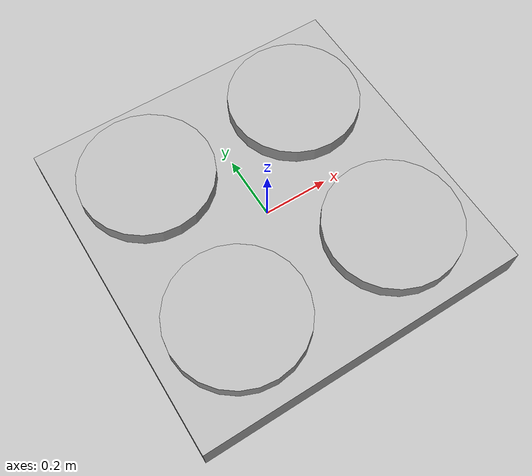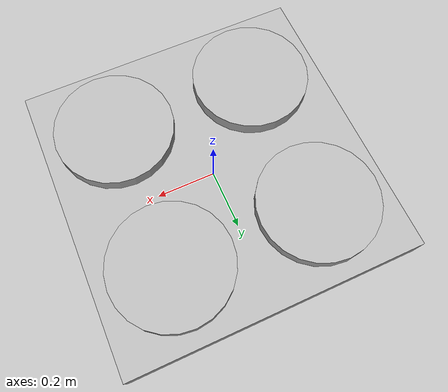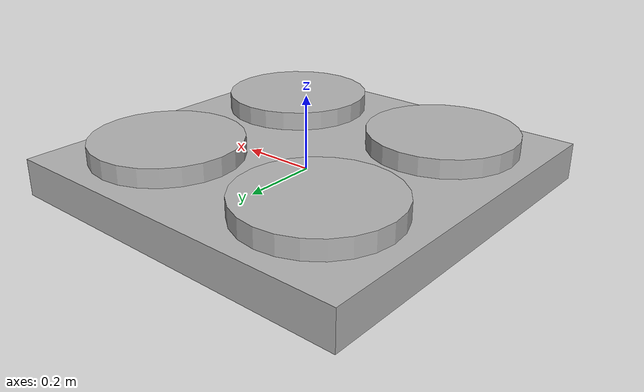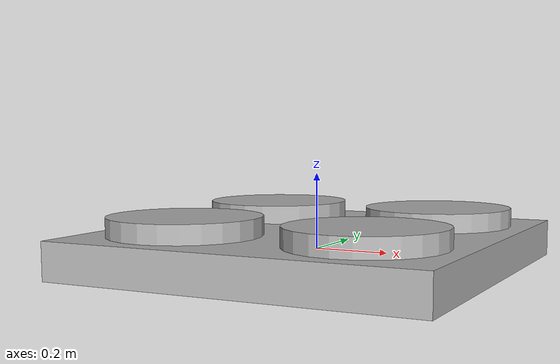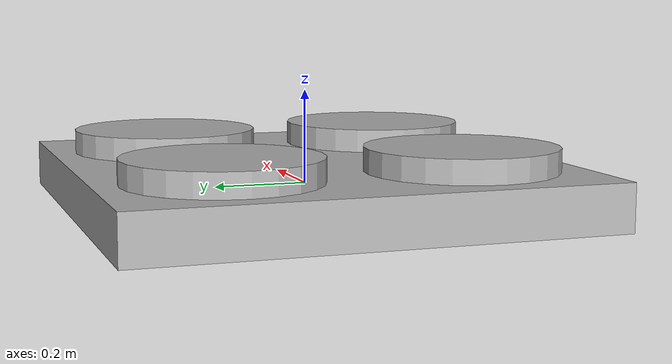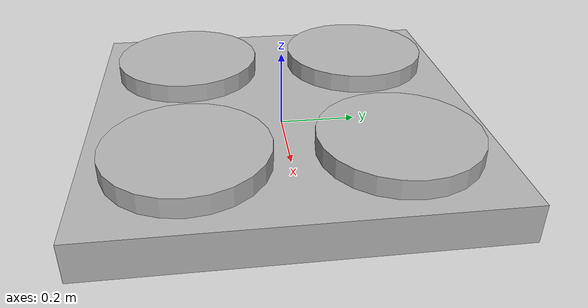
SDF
<?xml version="1.0" ?>
<sdf version="1.6">

    <model name='magnets'>

      <pose>0 0 0 0 0 0</pose>

      <link name='box_link'>
        <inertial>
          <inertia>
            <ixx>0.16666</ixx>
            <ixy>0</ixy>
            <ixz>0</ixz>
            <iyy>0.16666</iyy>
            <iyz>0</iyz>
            <izz>0.16666</izz>
          </inertia>
          <mass>1</mass>
          <pose>0 0 0 0 0 0</pose>
        </inertial>
        <collision name='box_collision'>
          <geometry>
            <box>
              <size>1 1 0.1</size>
            </box>
          </geometry>
          <surface>
            <friction>
              <ode/>
            </friction>
            <bounce/>
            <contact/>
          </surface>
        </collision>
        <visual name='box_visual'>
          <geometry>
            <box>
              <size>1 1 0.1</size>
            </box>
          </geometry>
          <material>
            <ambient>0.3 0.3 0.3 1</ambient>
            <diffuse>0.7 0.7 0.7 1</diffuse>
            <specular>1 1 1 1</specular>
          </material>
        </visual>
        <pose>0 0 0 0 -0 0</pose>
        <enable_wind>false</enable_wind>
      </link>

      <link name='magnet_1'>
        <sensor name='sensor_contact' type='contact'>
          <contact>
              <collision>magnet_1_collision</collision>
              <topic>magnet_1_contact</topic>
          </contact>
        </sensor>
        <inertial>
          <inertia>
            <ixx>0.14580000000000001</ixx>
            <ixy>0</ixy>
            <ixz>0</ixz>
            <iyy>0.14580000000000001</iyy>
            <iyz>0</iyz>
            <izz>0.125</izz>
          </inertia>
          <mass>1</mass>
          <pose>0 0 0 0 0 0</pose>
        </inertial>
        <collision name='magnet_1_collision'>
          <geometry>
            <cylinder>
              <radius>0.2</radius>
              <length>0.1</length>
            </cylinder>
          </geometry>
          <surface>
            <friction>
              <ode/>
            </friction>
            <bounce/>
            <contact/>
          </surface>
        </collision>
        <visual name='magnet_1_visual'>
          <geometry>
            <cylinder>
              <radius>0.2</radius>
              <length>0.1</length>
            </cylinder>
          </geometry>
          <material>
            <ambient>0.3 0.3 0.3 1</ambient>
            <diffuse>0.7 0.7 0.7 1</diffuse>
            <specular>1 1 1 1</specular>
          </material>
        </visual>
        <pose>0.25 0.25 0.05 0 -0 0</pose>
        <enable_wind>false</enable_wind>
      </link>

      <link name='magnet_2'>
        <sensor name='sensor_contact' type='contact'>
          <contact>
              <collision>magnet_2_collision</collision>
              <topic>magnet_2_contact</topic>
          </contact>
        </sensor>
        <inertial>
          <inertia>
            <ixx>0.14580000000000001</ixx>
            <ixy>0</ixy>
            <ixz>0</ixz>
            <iyy>0.14580000000000001</iyy>
            <iyz>0</iyz>
            <izz>0.125</izz>
          </inertia>
          <mass>1</mass>
          <pose>0 0 0 0 0 0</pose>
        </inertial>
        <collision name='magnet_2_collision'>
          <geometry>
            <cylinder>
              <radius>0.2</radius>
              <length>0.1</length>
            </cylinder>
          </geometry>
          <surface>
            <friction>
              <ode/>
            </friction>
            <bounce/>
            <contact/>
          </surface>
        </collision>
        <visual name='magnet_2_visual'>
          <geometry>
            <cylinder>
              <radius>0.2</radius>
              <length>0.1</length>
            </cylinder>
          </geometry>
          <material>
            <ambient>0.3 0.3 0.3 1</ambient>
            <diffuse>0.7 0.7 0.7 1</diffuse>
            <specular>1 1 1 1</specular>
          </material>
        </visual>
        <pose>0.25 -0.25 0.05 0 -0 0</pose>
        <enable_wind>false</enable_wind>
      </link>

      <link name='magnet_3'>
        <sensor name='sensor_contact' type='contact'>
          <contact>
              <collision>magnet_3_collision</collision>
              <topic>magnet_3_contact</topic>
          </contact>
        </sensor>
        <inertial>
          <inertia>
            <ixx>0.14580000000000001</ixx>
            <ixy>0</ixy>
            <ixz>0</ixz>
            <iyy>0.14580000000000001</iyy>
            <iyz>0</iyz>
            <izz>0.125</izz>
          </inertia>
          <mass>1</mass>
          <pose>0 0 0 0 0 0</pose>
        </inertial>
        <collision name='magnet_3_collision'>
          <geometry>
            <cylinder>
              <radius>0.2</radius>
              <length>0.1</length>
            </cylinder>
          </geometry>
          <surface>
            <friction>
              <ode/>
            </friction>
            <bounce/>
            <contact/>
          </surface>
        </collision>
        <visual name='magnet_3_visual'>
          <geometry>
            <cylinder>
              <radius>0.2</radius>
              <length>0.1</length>
            </cylinder>
          </geometry>
          <material>
            <ambient>0.3 0.3 0.3 1</ambient>
            <diffuse>0.7 0.7 0.7 1</diffuse>
            <specular>1 1 1 1</specular>
          </material>
        </visual>
        <pose>-0.25 -0.25 0.05 0 -0 0</pose>
        <enable_wind>false</enable_wind>
      </link>

      <link name='magnet_4'>
        <sensor name='sensor_contact' type='contact'>
          <contact>
              <collision>magnet_4_collision</collision>
              <topic>magnet_4_contact</topic>
          </contact>
        </sensor>
        <inertial>
          <inertia>
            <ixx>0.14580000000000001</ixx>
            <ixy>0</ixy>
            <ixz>0</ixz>
            <iyy>0.14580000000000001</iyy>
            <iyz>0</iyz>
            <izz>0.125</izz>
          </inertia>
          <mass>1</mass>
          <pose>0 0 0 0 0 0</pose>
        </inertial>
        <collision name='magnet_4_collision'>
          <geometry>
            <cylinder>
              <radius>0.2</radius>
              <length>0.1</length>
            </cylinder>
          </geometry>
          <surface>
            <friction>
              <ode/>
            </friction>
            <bounce/>
            <contact/>
          </surface>
        </collision>
        <visual name='magnet_4_visual'>
          <geometry>
            <cylinder>
              <radius>0.2</radius>
              <length>0.1</length>
            </cylinder>
          </geometry>
          <material>
            <ambient>0.3 0.3 0.3 1</ambient>
            <diffuse>0.7 0.7 0.7 1</diffuse>
            <specular>1 1 1 1</specular>
          </material>
        </visual>
        <pose>-0.25 0.25 0.05 0 -0 0</pose>
        <enable_wind>false</enable_wind>
      </link>

      <joint name="joint_magnet_1" type="fixed">
        <child>magnet_1</child>
        <parent>box_link</parent>
      </joint>

      <joint name="joint_magnet_2" type="fixed">
        <child>magnet_2</child>
        <parent>box_link</parent>
      </joint>

      <joint name="joint_magnet_3" type="fixed">
        <child>magnet_3</child>
        <parent>box_link</parent>
      </joint>

      <joint name="joint_magnet_4" type="fixed">
        <child>magnet_4</child>
        <parent>box_link</parent>
      </joint>

      <static>false</static>
      <self_collide>false</self_collide>

      <plugin name='ignition::gazebo::systems::MagnetPlugin' filename='MagnetPlugin'>
        <source>
          <link_name>magnet_1</link_name>
          <collision_name>magnet_1_collision</collision_name>
        </source>
        <source>
          <link_name>magnet_2</link_name>
          <collision_name>magnet_2_collision</collision_name>
        </source>
        <source>
          <link_name>magnet_3</link_name>
          <collision_name>magnet_3_collision</collision_name>
        </source>
        <source>
          <link_name>magnet_4</link_name>
          <collision_name>magnet_4_collision</collision_name>
        </source>

        <target>
          <model_name>cylinder_top</model_name>
          <link_name>cylinder_link</link_name>
          <collision_name>cylinder_collision</collision_name>
        </target>

        <switch_topic>/switch</switch_topic>
        <connection_topic>/connection</connection_topic>
        <status_topic>/status</status_topic>
      </plugin>

    </model>

</sdf>
